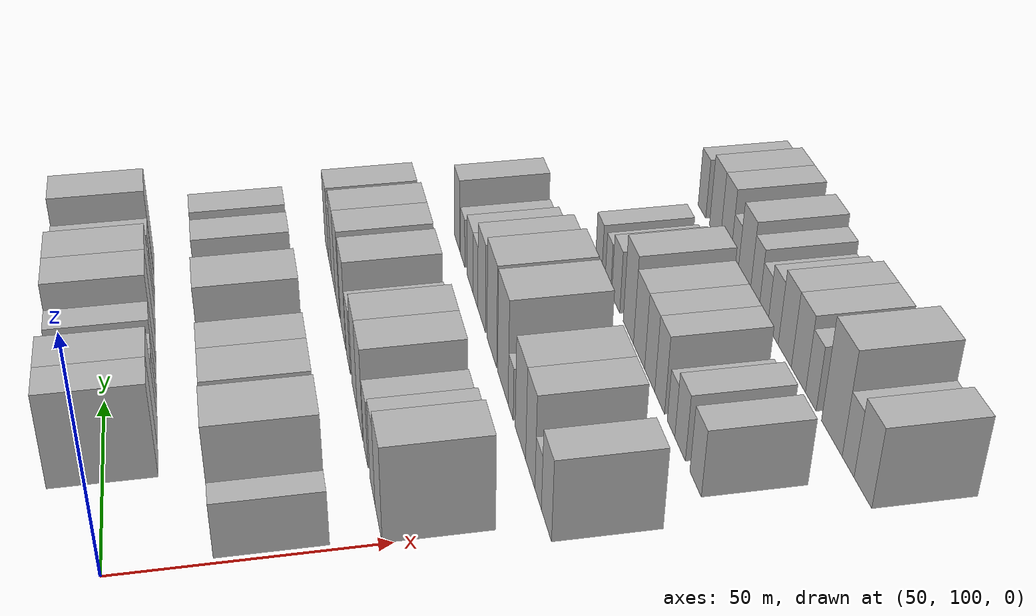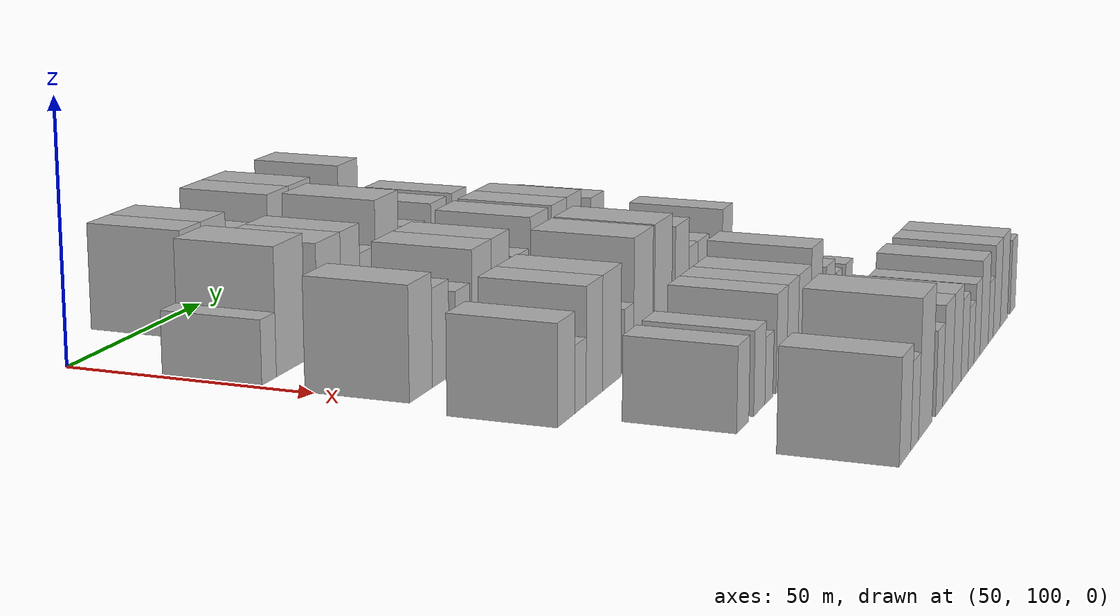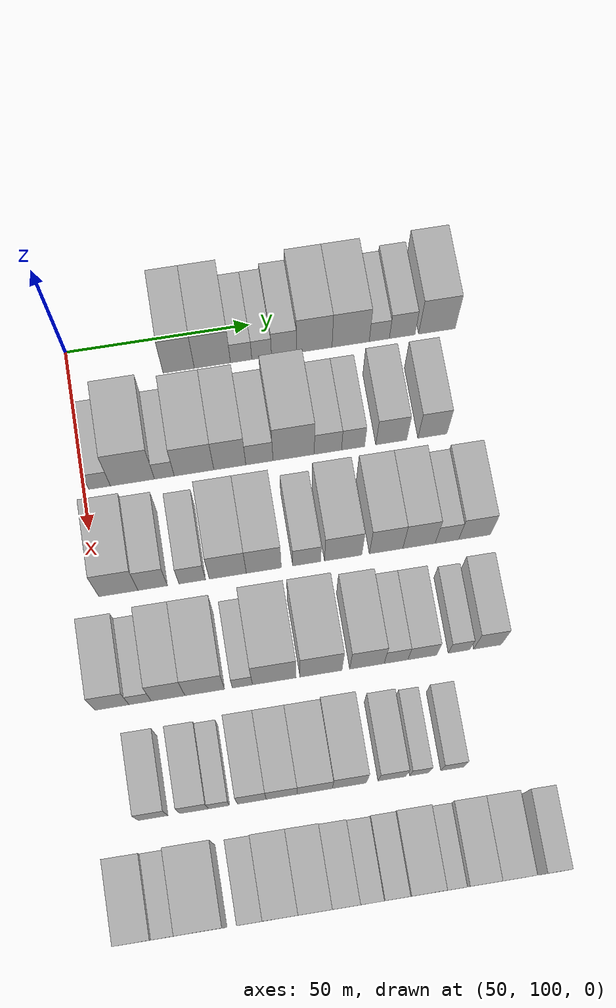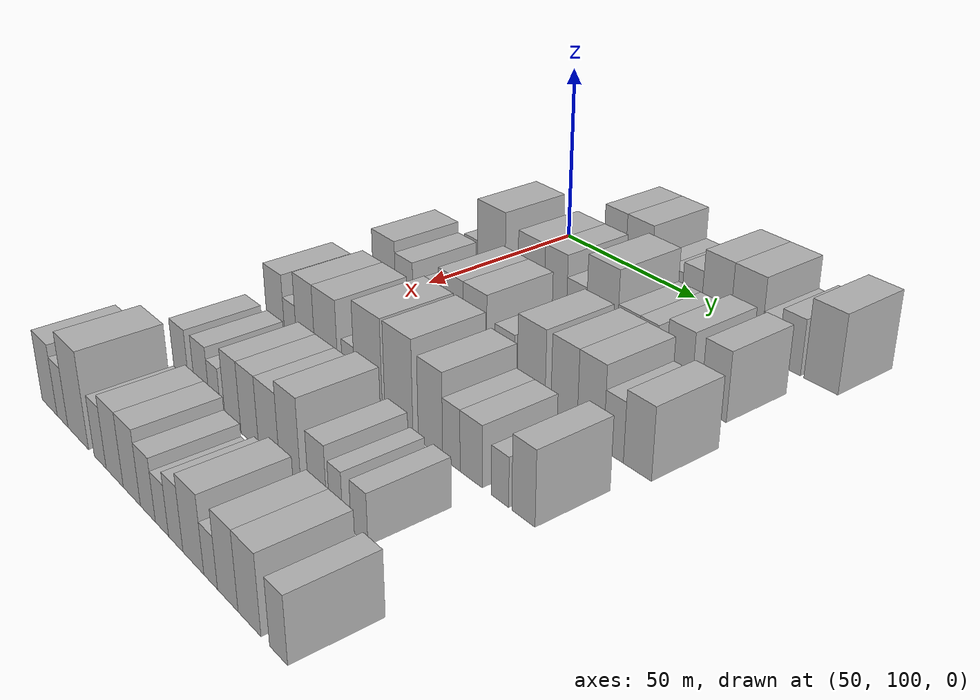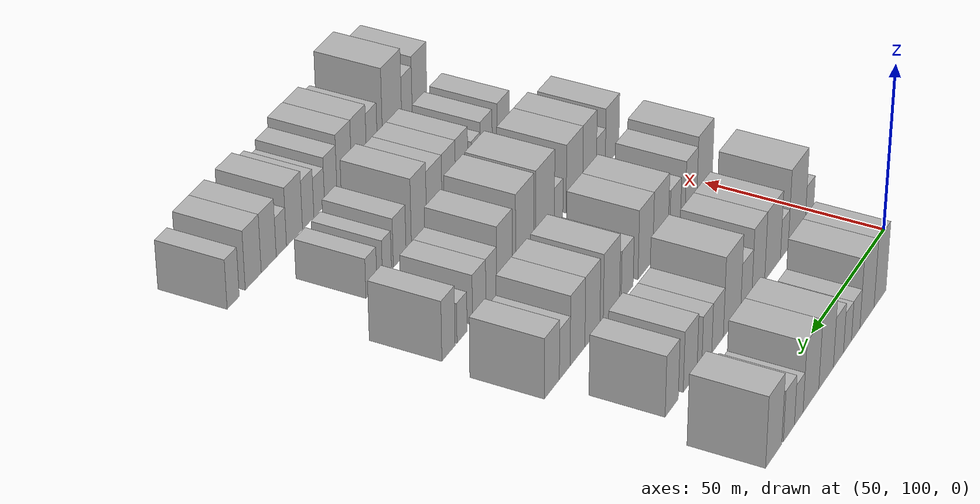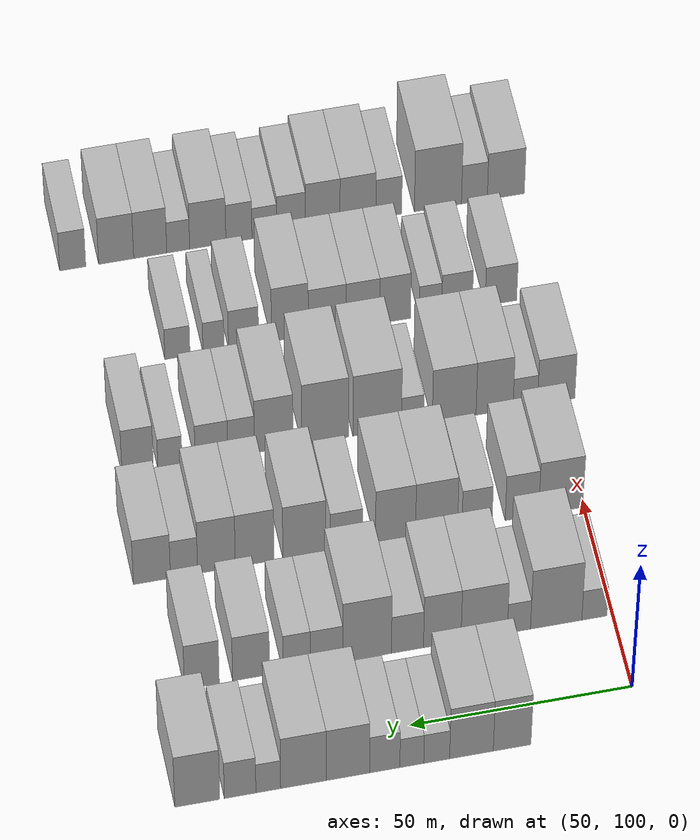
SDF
<sdf version="1.6">
 <world name="default">
  <model name="building_67">
   <static>1</static>
   <pose>50.0000 129.2754 0 0.000000 0.000000 0.000000</pose>
   <link name="link">
    <pose>0 0 10.50 0 0 0</pose>
    <collision name="collision"><geometry><box><size>20.0000 8.4361 21.0000</size></box></geometry></collision>
    <visual name="visual">
     <cast_shadows>0</cast_shadows>
     <geometry><box><size>20.0000 8.4361 21.0000</size></box></geometry>
     <material>
      <script>
       <uri>model://HANNAS_wall/materials/scripts</uri>
       <uri>model://HANNAS_wall/materials/textures</uri>
       <name>vrc/HANNAS_wall</name>
      </script>
     </material>
    </visual>
   </link>
  </model>
  <model name="building_68">
   <static>1</static>
   <pose>50.0000 138.3827 0 0.000000 0.000000 0.000000</pose>
   <link name="link">
    <pose>0 0 10.50 0 0 0</pose>
    <collision name="collision"><geometry><box><size>20.0000 9.7784 21.0000</size></box></geometry></collision>
    <visual name="visual">
     <cast_shadows>0</cast_shadows>
     <geometry><box><size>20.0000 9.7784 21.0000</size></box></geometry>
     <material>
      <script>
       <uri>model://HANNAS_wall/materials/scripts</uri>
       <uri>model://HANNAS_wall/materials/textures</uri>
       <name>vrc/HANNAS_wall</name>
      </script>
     </material>
    </visual>
   </link>
  </model>
  <model name="building_69">
   <static>1</static>
   <pose>50.0000 146.1593 0 0.000000 0.000000 0.000000</pose>
   <link name="link">
    <pose>0 0 6.00 0 0 0</pose>
    <collision name="collision"><geometry><box><size>20.0000 5.7748 12.0000</size></box></geometry></collision>
    <visual name="visual">
     <cast_shadows>0</cast_shadows>
     <geometry><box><size>20.0000 5.7748 12.0000</size></box></geometry>
     <material>
      <script>
       <uri>model://HANNAS_wall/materials/scripts</uri>
       <uri>model://HANNAS_wall/materials/textures</uri>
       <name>vrc/HANNAS_wall</name>
      </script>
     </material>
    </visual>
   </link>
  </model>
  <model name="building_70">
   <static>1</static>
   <pose>50.0000 151.7193 0 0.000000 0.000000 0.000000</pose>
   <link name="link">
    <pose>0 0 6.00 0 0 0</pose>
    <collision name="collision"><geometry><box><size>20.0000 5.3453 12.0000</size></box></geometry></collision>
    <visual name="visual">
     <cast_shadows>0</cast_shadows>
     <geometry><box><size>20.0000 5.3453 12.0000</size></box></geometry>
     <material>
      <script>
       <uri>model://HANNAS_wall/materials/scripts</uri>
       <uri>model://HANNAS_wall/materials/textures</uri>
       <name>vrc/HANNAS_wall</name>
      </script>
     </material>
    </visual>
   </link>
  </model>
  <model name="building_71">
   <static>1</static>
   <pose>50.0000 157.7766 0 0.000000 0.000000 0.000000</pose>
   <link name="link">
    <pose>0 0 7.50 0 0 0</pose>
    <collision name="collision"><geometry><box><size>20.0000 6.7693 15.0000</size></box></geometry></collision>
    <visual name="visual">
     <cast_shadows>0</cast_shadows>
     <geometry><box><size>20.0000 6.7693 15.0000</size></box></geometry>
     <material>
      <script>
       <uri>model://HANNAS_wall/materials/scripts</uri>
       <uri>model://HANNAS_wall/materials/textures</uri>
       <name>vrc/HANNAS_wall</name>
      </script>
     </material>
    </visual>
   </link>
  </model>
  <model name="building_72">
   <static>1</static>
   <pose>50.0000 165.9921 0 0.000000 0.000000 0.000000</pose>
   <link name="link">
    <pose>0 0 10.50 0 0 0</pose>
    <collision name="collision"><geometry><box><size>20.0000 9.6617 21.0000</size></box></geometry></collision>
    <visual name="visual">
     <cast_shadows>0</cast_shadows>
     <geometry><box><size>20.0000 9.6617 21.0000</size></box></geometry>
     <material>
      <script>
       <uri>model://HANNAS_wall/materials/scripts</uri>
       <uri>model://HANNAS_wall/materials/textures</uri>
       <name>vrc/HANNAS_wall</name>
      </script>
     </material>
    </visual>
   </link>
  </model>
  <model name="building_73">
   <static>1</static>
   <pose>50.0000 175.8897 0 0.000000 0.000000 0.000000</pose>
   <link name="link">
    <pose>0 0 10.50 0 0 0</pose>
    <collision name="collision"><geometry><box><size>20.0000 10.1334 21.0000</size></box></geometry></collision>
    <visual name="visual">
     <cast_shadows>0</cast_shadows>
     <geometry><box><size>20.0000 10.1334 21.0000</size></box></geometry>
     <material>
      <script>
       <uri>model://HANNAS_wall/materials/scripts</uri>
       <uri>model://HANNAS_wall/materials/textures</uri>
       <name>vrc/HANNAS_wall</name>
      </script>
     </material>
    </visual>
   </link>
  </model>
  <model name="building_74">
   <static>1</static>
   <pose>50.0000 183.7047 0 0.000000 0.000000 0.000000</pose>
   <link name="link">
    <pose>0 0 6.00 0 0 0</pose>
    <collision name="collision"><geometry><box><size>20.0000 5.4967 12.0000</size></box></geometry></collision>
    <visual name="visual">
     <cast_shadows>0</cast_shadows>
     <geometry><box><size>20.0000 5.4967 12.0000</size></box></geometry>
     <material>
      <script>
       <uri>model://HANNAS_wall/materials/scripts</uri>
       <uri>model://HANNAS_wall/materials/textures</uri>
       <name>vrc/HANNAS_wall</name>
      </script>
     </material>
    </visual>
   </link>
  </model>
  <model name="building_75">
   <static>1</static>
   <pose>50.0000 189.9546 0 0.000000 0.000000 0.000000</pose>
   <link name="link">
    <pose>0 0 7.50 0 0 0</pose>
    <collision name="collision"><geometry><box><size>20.0000 7.0030 15.0000</size></box></geometry></collision>
    <visual name="visual">
     <cast_shadows>0</cast_shadows>
     <geometry><box><size>20.0000 7.0030 15.0000</size></box></geometry>
     <material>
      <script>
       <uri>model://HANNAS_wall/materials/scripts</uri>
       <uri>model://HANNAS_wall/materials/textures</uri>
       <name>vrc/HANNAS_wall</name>
      </script>
     </material>
    </visual>
   </link>
  </model>
  <model name="building_76">
   <static>1</static>
   <pose>50.0000 199.4460 0 0.000000 0.000000 0.000000</pose>
   <link name="link">
    <pose>0 0 10.50 0 0 0</pose>
    <collision name="collision"><geometry><box><size>20.0000 9.9798 21.0000</size></box></geometry></collision>
    <visual name="visual">
     <cast_shadows>0</cast_shadows>
     <geometry><box><size>20.0000 9.9798 21.0000</size></box></geometry>
     <material>
      <script>
       <uri>model://HANNAS_wall/materials/scripts</uri>
       <uri>model://HANNAS_wall/materials/textures</uri>
       <name>vrc/HANNAS_wall</name>
      </script>
     </material>
    </visual>
   </link>
  </model>
  <model name="building_182">
   <static>1</static>
   <pose>79.0000 104.2243 0 0.000000 0.000000 0.000000</pose>
   <link name="link">
    <pose>0 0 6.00 0 0 0</pose>
    <collision name="collision"><geometry><box><size>20.0000 5.7274 12.0000</size></box></geometry></collision>
    <visual name="visual">
     <cast_shadows>0</cast_shadows>
     <geometry><box><size>20.0000 5.7274 12.0000</size></box></geometry>
     <material>
      <script>
       <uri>model://HANNAS_wall/materials/scripts</uri>
       <uri>model://HANNAS_wall/materials/textures</uri>
       <name>vrc/HANNAS_wall</name>
      </script>
     </material>
    </visual>
   </link>
  </model>
  <model name="building_183">
   <static>1</static>
   <pose>79.0000 112.9127 0 0.000000 0.000000 0.000000</pose>
   <link name="link">
    <pose>0 0 12.00 0 0 0</pose>
    <collision name="collision"><geometry><box><size>20.0000 11.6494 24.0000</size></box></geometry></collision>
    <visual name="visual">
     <cast_shadows>0</cast_shadows>
     <geometry><box><size>20.0000 11.6494 24.0000</size></box></geometry>
     <material>
      <script>
       <uri>model://HANNAS_wall/materials/scripts</uri>
       <uri>model://HANNAS_wall/materials/textures</uri>
       <name>vrc/HANNAS_wall</name>
      </script>
     </material>
    </visual>
   </link>
  </model>
  <model name="building_184">
   <static>1</static>
   <pose>79.0000 121.3632 0 0.000000 0.000000 0.000000</pose>
   <link name="link">
    <pose>0 0 6.00 0 0 0</pose>
    <collision name="collision"><geometry><box><size>20.0000 5.2517 12.0000</size></box></geometry></collision>
    <visual name="visual">
     <cast_shadows>0</cast_shadows>
     <geometry><box><size>20.0000 5.2517 12.0000</size></box></geometry>
     <material>
      <script>
       <uri>model://HANNAS_wall/materials/scripts</uri>
       <uri>model://HANNAS_wall/materials/textures</uri>
       <name>vrc/HANNAS_wall</name>
      </script>
     </material>
    </visual>
   </link>
  </model>
  <model name="building_185">
   <static>1</static>
   <pose>79.0000 129.2382 0 0.000000 0.000000 0.000000</pose>
   <link name="link">
    <pose>0 0 10.50 0 0 0</pose>
    <collision name="collision"><geometry><box><size>20.0000 10.4982 21.0000</size></box></geometry></collision>
    <visual name="visual">
     <cast_shadows>0</cast_shadows>
     <geometry><box><size>20.0000 10.4982 21.0000</size></box></geometry>
     <material>
      <script>
       <uri>model://HANNAS_wall/materials/scripts</uri>
       <uri>model://HANNAS_wall/materials/textures</uri>
       <name>vrc/HANNAS_wall</name>
      </script>
     </material>
    </visual>
   </link>
  </model>
  <model name="building_186">
   <static>1</static>
   <pose>79.0000 138.7290 0 0.000000 0.000000 0.000000</pose>
   <link name="link">
    <pose>0 0 10.50 0 0 0</pose>
    <collision name="collision"><geometry><box><size>20.0000 8.4835 21.0000</size></box></geometry></collision>
    <visual name="visual">
     <cast_shadows>0</cast_shadows>
     <geometry><box><size>20.0000 8.4835 21.0000</size></box></geometry>
     <material>
      <script>
       <uri>model://HANNAS_wall/materials/scripts</uri>
       <uri>model://HANNAS_wall/materials/textures</uri>
       <name>vrc/HANNAS_wall</name>
      </script>
     </material>
    </visual>
   </link>
  </model>
  <model name="building_187">
   <static>1</static>
   <pose>79.0000 146.5962 0 0.000000 0.000000 0.000000</pose>
   <link name="link">
    <pose>0 0 7.50 0 0 0</pose>
    <collision name="collision"><geometry><box><size>20.0000 7.2509 15.0000</size></box></geometry></collision>
    <visual name="visual">
     <cast_shadows>0</cast_shadows>
     <geometry><box><size>20.0000 7.2509 15.0000</size></box></geometry>
     <material>
      <script>
       <uri>model://HANNAS_wall/materials/scripts</uri>
       <uri>model://HANNAS_wall/materials/textures</uri>
       <name>vrc/HANNAS_wall</name>
      </script>
     </material>
    </visual>
   </link>
  </model>
  <model name="building_188">
   <static>1</static>
   <pose>79.0000 155.7147 0 0.000000 0.000000 0.000000</pose>
   <link name="link">
    <pose>0 0 12.00 0 0 0</pose>
    <collision name="collision"><geometry><box><size>20.0000 10.9860 24.0000</size></box></geometry></collision>
    <visual name="visual">
     <cast_shadows>0</cast_shadows>
     <geometry><box><size>20.0000 10.9860 24.0000</size></box></geometry>
     <material>
      <script>
       <uri>model://HANNAS_wall/materials/scripts</uri>
       <uri>model://HANNAS_wall/materials/textures</uri>
       <name>vrc/HANNAS_wall</name>
      </script>
     </material>
    </visual>
   </link>
  </model>
  <model name="building_189">
   <static>1</static>
   <pose>79.0000 164.8472 0 0.000000 0.000000 0.000000</pose>
   <link name="link">
    <pose>0 0 7.50 0 0 0</pose>
    <collision name="collision"><geometry><box><size>20.0000 7.2790 15.0000</size></box></geometry></collision>
    <visual name="visual">
     <cast_shadows>0</cast_shadows>
     <geometry><box><size>20.0000 7.2790 15.0000</size></box></geometry>
     <material>
      <script>
       <uri>model://HANNAS_wall/materials/scripts</uri>
       <uri>model://HANNAS_wall/materials/textures</uri>
       <name>vrc/HANNAS_wall</name>
      </script>
     </material>
    </visual>
   </link>
  </model>
  <model name="building_190">
   <static>1</static>
   <pose>79.0000 171.5733 0 0.000000 0.000000 0.000000</pose>
   <link name="link">
    <pose>0 0 7.50 0 0 0</pose>
    <collision name="collision"><geometry><box><size>20.0000 6.1732 15.0000</size></box></geometry></collision>
    <visual name="visual">
     <cast_shadows>0</cast_shadows>
     <geometry><box><size>20.0000 6.1732 15.0000</size></box></geometry>
     <material>
      <script>
       <uri>model://HANNAS_wall/materials/scripts</uri>
       <uri>model://HANNAS_wall/materials/textures</uri>
       <name>vrc/HANNAS_wall</name>
      </script>
     </material>
    </visual>
   </link>
  </model>
  <model name="building_191">
   <static>1</static>
   <pose>79.0000 181.8068 0 0.000000 0.000000 0.000000</pose>
   <link name="link">
    <pose>0 0 9.00 0 0 0</pose>
    <collision name="collision"><geometry><box><size>20.0000 8.2939 18.0000</size></box></geometry></collision>
    <visual name="visual">
     <cast_shadows>0</cast_shadows>
     <geometry><box><size>20.0000 8.2939 18.0000</size></box></geometry>
     <material>
      <script>
       <uri>model://HANNAS_wall/materials/scripts</uri>
       <uri>model://HANNAS_wall/materials/textures</uri>
       <name>vrc/HANNAS_wall</name>
      </script>
     </material>
    </visual>
   </link>
  </model>
  <model name="building_192">
   <static>1</static>
   <pose>79.0000 192.8562 0 0.000000 0.000000 0.000000</pose>
   <link name="link">
    <pose>0 0 9.00 0 0 0</pose>
    <collision name="collision"><geometry><box><size>20.0000 7.8050 18.0000</size></box></geometry></collision>
    <visual name="visual">
     <cast_shadows>0</cast_shadows>
     <geometry><box><size>20.0000 7.8050 18.0000</size></box></geometry>
     <material>
      <script>
       <uri>model://HANNAS_wall/materials/scripts</uri>
       <uri>model://HANNAS_wall/materials/textures</uri>
       <name>vrc/HANNAS_wall</name>
      </script>
     </material>
    </visual>
   </link>
  </model>
  <model name="building_294">
   <static>1</static>
   <pose>108.0000 105.3740 0 0.000000 0.000000 0.000000</pose>
   <link name="link">
    <pose>0 0 10.50 0 0 0</pose>
    <collision name="collision"><geometry><box><size>20.0000 10.1405 21.0000</size></box></geometry></collision>
    <visual name="visual">
     <cast_shadows>0</cast_shadows>
     <geometry><box><size>20.0000 10.1405 21.0000</size></box></geometry>
     <material>
      <script>
       <uri>model://HANNAS_wall/materials/scripts</uri>
       <uri>model://HANNAS_wall/materials/textures</uri>
       <name>vrc/HANNAS_wall</name>
      </script>
     </material>
    </visual>
   </link>
  </model>
  <model name="building_295">
   <static>1</static>
   <pose>108.0000 114.2817 0 0.000000 0.000000 0.000000</pose>
   <link name="link">
    <pose>0 0 9.00 0 0 0</pose>
    <collision name="collision"><geometry><box><size>20.0000 7.6747 18.0000</size></box></geometry></collision>
    <visual name="visual">
     <cast_shadows>0</cast_shadows>
     <geometry><box><size>20.0000 7.6747 18.0000</size></box></geometry>
     <material>
      <script>
       <uri>model://HANNAS_wall/materials/scripts</uri>
       <uri>model://HANNAS_wall/materials/textures</uri>
       <name>vrc/HANNAS_wall</name>
      </script>
     </material>
    </visual>
   </link>
  </model>
  <model name="building_296">
   <static>1</static>
   <pose>108.0000 124.5735 0 0.000000 0.000000 0.000000</pose>
   <link name="link">
    <pose>0 0 7.50 0 0 0</pose>
    <collision name="collision"><geometry><box><size>20.0000 6.9089 15.0000</size></box></geometry></collision>
    <visual name="visual">
     <cast_shadows>0</cast_shadows>
     <geometry><box><size>20.0000 6.9089 15.0000</size></box></geometry>
     <material>
      <script>
       <uri>model://HANNAS_wall/materials/scripts</uri>
       <uri>model://HANNAS_wall/materials/textures</uri>
       <name>vrc/HANNAS_wall</name>
      </script>
     </material>
    </visual>
   </link>
  </model>
  <model name="building_297">
   <static>1</static>
   <pose>108.0000 133.8400 0 0.000000 0.000000 0.000000</pose>
   <link name="link">
    <pose>0 0 10.50 0 0 0</pose>
    <collision name="collision"><geometry><box><size>20.0000 9.6241 21.0000</size></box></geometry></collision>
    <visual name="visual">
     <cast_shadows>0</cast_shadows>
     <geometry><box><size>20.0000 9.6241 21.0000</size></box></geometry>
     <material>
      <script>
       <uri>model://HANNAS_wall/materials/scripts</uri>
       <uri>model://HANNAS_wall/materials/textures</uri>
       <name>vrc/HANNAS_wall</name>
      </script>
     </material>
    </visual>
   </link>
  </model>
  <model name="building_298">
   <static>1</static>
   <pose>108.0000 143.2260 0 0.000000 0.000000 0.000000</pose>
   <link name="link">
    <pose>0 0 10.50 0 0 0</pose>
    <collision name="collision"><geometry><box><size>20.0000 9.1478 21.0000</size></box></geometry></collision>
    <visual name="visual">
     <cast_shadows>0</cast_shadows>
     <geometry><box><size>20.0000 9.1478 21.0000</size></box></geometry>
     <material>
      <script>
       <uri>model://HANNAS_wall/materials/scripts</uri>
       <uri>model://HANNAS_wall/materials/textures</uri>
       <name>vrc/HANNAS_wall</name>
      </script>
     </material>
    </visual>
   </link>
  </model>
  <model name="building_299">
   <static>1</static>
   <pose>108.0000 154.4499 0 0.000000 0.000000 0.000000</pose>
   <link name="link">
    <pose>0 0 7.50 0 0 0</pose>
    <collision name="collision"><geometry><box><size>20.0000 7.3000 15.0000</size></box></geometry></collision>
    <visual name="visual">
     <cast_shadows>0</cast_shadows>
     <geometry><box><size>20.0000 7.3000 15.0000</size></box></geometry>
     <material>
      <script>
       <uri>model://HANNAS_wall/materials/scripts</uri>
       <uri>model://HANNAS_wall/materials/textures</uri>
       <name>vrc/HANNAS_wall</name>
      </script>
     </material>
    </visual>
   </link>
  </model>
  <model name="building_300">
   <static>1</static>
   <pose>108.0000 163.9937 0 0.000000 0.000000 0.000000</pose>
   <link name="link">
    <pose>0 0 10.50 0 0 0</pose>
    <collision name="collision"><geometry><box><size>20.0000 9.7877 21.0000</size></box></geometry></collision>
    <visual name="visual">
     <cast_shadows>0</cast_shadows>
     <geometry><box><size>20.0000 9.7877 21.0000</size></box></geometry>
     <material>
      <script>
       <uri>model://HANNAS_wall/materials/scripts</uri>
       <uri>model://HANNAS_wall/materials/textures</uri>
       <name>vrc/HANNAS_wall</name>
      </script>
     </material>
    </visual>
   </link>
  </model>
  <model name="building_301">
   <static>1</static>
   <pose>108.0000 175.2840 0 0.000000 0.000000 0.000000</pose>
   <link name="link">
    <pose>0 0 10.50 0 0 0</pose>
    <collision name="collision"><geometry><box><size>20.0000 8.7928 21.0000</size></box></geometry></collision>
    <visual name="visual">
     <cast_shadows>0</cast_shadows>
     <geometry><box><size>20.0000 8.7928 21.0000</size></box></geometry>
     <material>
      <script>
       <uri>model://HANNAS_wall/materials/scripts</uri>
       <uri>model://HANNAS_wall/materials/textures</uri>
       <name>vrc/HANNAS_wall</name>
      </script>
     </material>
    </visual>
   </link>
  </model>
  <model name="building_302">
   <static>1</static>
   <pose>108.0000 183.9537 0 0.000000 0.000000 0.000000</pose>
   <link name="link">
    <pose>0 0 10.50 0 0 0</pose>
    <collision name="collision"><geometry><box><size>20.0000 8.5467 21.0000</size></box></geometry></collision>
    <visual name="visual">
     <cast_shadows>0</cast_shadows>
     <geometry><box><size>20.0000 8.5467 21.0000</size></box></geometry>
     <material>
      <script>
       <uri>model://HANNAS_wall/materials/scripts</uri>
       <uri>model://HANNAS_wall/materials/textures</uri>
       <name>vrc/HANNAS_wall</name>
      </script>
     </material>
    </visual>
   </link>
  </model>
  <model name="building_303">
   <static>1</static>
   <pose>108.0000 191.3135 0 0.000000 0.000000 0.000000</pose>
   <link name="link">
    <pose>0 0 7.50 0 0 0</pose>
    <collision name="collision"><geometry><box><size>20.0000 6.1730 15.0000</size></box></geometry></collision>
    <visual name="visual">
     <cast_shadows>0</cast_shadows>
     <geometry><box><size>20.0000 6.1730 15.0000</size></box></geometry>
     <material>
      <script>
       <uri>model://HANNAS_wall/materials/scripts</uri>
       <uri>model://HANNAS_wall/materials/textures</uri>
       <name>vrc/HANNAS_wall</name>
      </script>
     </material>
    </visual>
   </link>
  </model>
  <model name="building_304">
   <static>1</static>
   <pose>108.0000 198.6017 0 0.000000 0.000000 0.000000</pose>
   <link name="link">
    <pose>0 0 9.00 0 0 0</pose>
    <collision name="collision"><geometry><box><size>20.0000 8.4033 18.0000</size></box></geometry></collision>
    <visual name="visual">
     <cast_shadows>0</cast_shadows>
     <geometry><box><size>20.0000 8.4033 18.0000</size></box></geometry>
     <material>
      <script>
       <uri>model://HANNAS_wall/materials/scripts</uri>
       <uri>model://HANNAS_wall/materials/textures</uri>
       <name>vrc/HANNAS_wall</name>
      </script>
     </material>
    </visual>
   </link>
  </model>
  <model name="building_402">
   <static>1</static>
   <pose>137.0000 99.9290 0 0.000000 0.000000 0.000000</pose>
   <link name="link">
    <pose>0 0 9.00 0 0 0</pose>
    <collision name="collision"><geometry><box><size>20.0000 8.6572 18.0000</size></box></geometry></collision>
    <visual name="visual">
     <cast_shadows>0</cast_shadows>
     <geometry><box><size>20.0000 8.6572 18.0000</size></box></geometry>
     <material>
      <script>
       <uri>model://HANNAS_wall/materials/scripts</uri>
       <uri>model://HANNAS_wall/materials/textures</uri>
       <name>vrc/HANNAS_wall</name>
      </script>
     </material>
    </visual>
   </link>
  </model>
  <model name="building_403">
   <static>1</static>
   <pose>137.0000 107.1037 0 0.000000 0.000000 0.000000</pose>
   <link name="link">
    <pose>0 0 6.00 0 0 0</pose>
    <collision name="collision"><geometry><box><size>20.0000 5.6922 12.0000</size></box></geometry></collision>
    <visual name="visual">
     <cast_shadows>0</cast_shadows>
     <geometry><box><size>20.0000 5.6922 12.0000</size></box></geometry>
     <material>
      <script>
       <uri>model://HANNAS_wall/materials/scripts</uri>
       <uri>model://HANNAS_wall/materials/textures</uri>
       <name>vrc/HANNAS_wall</name>
      </script>
     </material>
    </visual>
   </link>
  </model>
  <model name="building_404">
   <static>1</static>
   <pose>137.0000 114.2315 0 0.000000 0.000000 0.000000</pose>
   <link name="link">
    <pose>0 0 10.50 0 0 0</pose>
    <collision name="collision"><geometry><box><size>20.0000 8.5635 21.0000</size></box></geometry></collision>
    <visual name="visual">
     <cast_shadows>0</cast_shadows>
     <geometry><box><size>20.0000 8.5635 21.0000</size></box></geometry>
     <material>
      <script>
       <uri>model://HANNAS_wall/materials/scripts</uri>
       <uri>model://HANNAS_wall/materials/textures</uri>
       <name>vrc/HANNAS_wall</name>
      </script>
     </material>
    </visual>
   </link>
  </model>
  <model name="building_405">
   <static>1</static>
   <pose>137.0000 123.5830 0 0.000000 0.000000 0.000000</pose>
   <link name="link">
    <pose>0 0 10.50 0 0 0</pose>
    <collision name="collision"><geometry><box><size>20.0000 10.1394 21.0000</size></box></geometry></collision>
    <visual name="visual">
     <cast_shadows>0</cast_shadows>
     <geometry><box><size>20.0000 10.1394 21.0000</size></box></geometry>
     <material>
      <script>
       <uri>model://HANNAS_wall/materials/scripts</uri>
       <uri>model://HANNAS_wall/materials/textures</uri>
       <name>vrc/HANNAS_wall</name>
      </script>
     </material>
    </visual>
   </link>
  </model>
  <model name="building_406">
   <static>1</static>
   <pose>137.0000 133.2210 0 0.000000 0.000000 0.000000</pose>
   <link name="link">
    <pose>0 0 6.00 0 0 0</pose>
    <collision name="collision"><geometry><box><size>20.0000 5.1366 12.0000</size></box></geometry></collision>
    <visual name="visual">
     <cast_shadows>0</cast_shadows>
     <geometry><box><size>20.0000 5.1366 12.0000</size></box></geometry>
     <material>
      <script>
       <uri>model://HANNAS_wall/materials/scripts</uri>
       <uri>model://HANNAS_wall/materials/textures</uri>
       <name>vrc/HANNAS_wall</name>
      </script>
     </material>
    </visual>
   </link>
  </model>
  <model name="building_407">
   <static>1</static>
   <pose>137.0000 141.3851 0 0.000000 0.000000 0.000000</pose>
   <link name="link">
    <pose>0 0 12.00 0 0 0</pose>
    <collision name="collision"><geometry><box><size>20.0000 11.1916 24.0000</size></box></geometry></collision>
    <visual name="visual">
     <cast_shadows>0</cast_shadows>
     <geometry><box><size>20.0000 11.1916 24.0000</size></box></geometry>
     <material>
      <script>
       <uri>model://HANNAS_wall/materials/scripts</uri>
       <uri>model://HANNAS_wall/materials/textures</uri>
       <name>vrc/HANNAS_wall</name>
      </script>
     </material>
    </visual>
   </link>
  </model>
  <model name="building_408">
   <static>1</static>
   <pose>137.0000 153.3706 0 0.000000 0.000000 0.000000</pose>
   <link name="link">
    <pose>0 0 12.00 0 0 0</pose>
    <collision name="collision"><geometry><box><size>20.0000 10.7793 24.0000</size></box></geometry></collision>
    <visual name="visual">
     <cast_shadows>0</cast_shadows>
     <geometry><box><size>20.0000 10.7793 24.0000</size></box></geometry>
     <material>
      <script>
       <uri>model://HANNAS_wall/materials/scripts</uri>
       <uri>model://HANNAS_wall/materials/textures</uri>
       <name>vrc/HANNAS_wall</name>
      </script>
     </material>
    </visual>
   </link>
  </model>
  <model name="building_409">
   <static>1</static>
   <pose>137.0000 165.1963 0 0.000000 0.000000 0.000000</pose>
   <link name="link">
    <pose>0 0 10.50 0 0 0</pose>
    <collision name="collision"><geometry><box><size>20.0000 8.8721 21.0000</size></box></geometry></collision>
    <visual name="visual">
     <cast_shadows>0</cast_shadows>
     <geometry><box><size>20.0000 8.8721 21.0000</size></box></geometry>
     <material>
      <script>
       <uri>model://HANNAS_wall/materials/scripts</uri>
       <uri>model://HANNAS_wall/materials/textures</uri>
       <name>vrc/HANNAS_wall</name>
      </script>
     </material>
    </visual>
   </link>
  </model>
  <model name="building_410">
   <static>1</static>
   <pose>137.0000 172.6875 0 0.000000 0.000000 0.000000</pose>
   <link name="link">
    <pose>0 0 7.50 0 0 0</pose>
    <collision name="collision"><geometry><box><size>20.0000 6.1104 15.0000</size></box></geometry></collision>
    <visual name="visual">
     <cast_shadows>0</cast_shadows>
     <geometry><box><size>20.0000 6.1104 15.0000</size></box></geometry>
     <material>
      <script>
       <uri>model://HANNAS_wall/materials/scripts</uri>
       <uri>model://HANNAS_wall/materials/textures</uri>
       <name>vrc/HANNAS_wall</name>
      </script>
     </material>
    </visual>
   </link>
  </model>
  <model name="building_411">
   <static>1</static>
   <pose>137.0000 179.4876 0 0.000000 0.000000 0.000000</pose>
   <link name="link">
    <pose>0 0 7.50 0 0 0</pose>
    <collision name="collision"><geometry><box><size>20.0000 7.4898 15.0000</size></box></geometry></collision>
    <visual name="visual">
     <cast_shadows>0</cast_shadows>
     <geometry><box><size>20.0000 7.4898 15.0000</size></box></geometry>
     <material>
      <script>
       <uri>model://HANNAS_wall/materials/scripts</uri>
       <uri>model://HANNAS_wall/materials/textures</uri>
       <name>vrc/HANNAS_wall</name>
      </script>
     </material>
    </visual>
   </link>
  </model>
  <model name="building_412">
   <static>1</static>
   <pose>137.0000 189.0177 0 0.000000 0.000000 0.000000</pose>
   <link name="link">
    <pose>0 0 6.00 0 0 0</pose>
    <collision name="collision"><geometry><box><size>20.0000 5.5703 12.0000</size></box></geometry></collision>
    <visual name="visual">
     <cast_shadows>0</cast_shadows>
     <geometry><box><size>20.0000 5.5703 12.0000</size></box></geometry>
     <material>
      <script>
       <uri>model://HANNAS_wall/materials/scripts</uri>
       <uri>model://HANNAS_wall/materials/textures</uri>
       <name>vrc/HANNAS_wall</name>
      </script>
     </material>
    </visual>
   </link>
  </model>
  <model name="building_413">
   <static>1</static>
   <pose>137.0000 196.4068 0 0.000000 0.000000 0.000000</pose>
   <link name="link">
    <pose>0 0 9.00 0 0 0</pose>
    <collision name="collision"><geometry><box><size>20.0000 7.2078 18.0000</size></box></geometry></collision>
    <visual name="visual">
     <cast_shadows>0</cast_shadows>
     <geometry><box><size>20.0000 7.2078 18.0000</size></box></geometry>
     <material>
      <script>
       <uri>model://HANNAS_wall/materials/scripts</uri>
       <uri>model://HANNAS_wall/materials/textures</uri>
       <name>vrc/HANNAS_wall</name>
      </script>
     </material>
    </visual>
   </link>
  </model>
  <model name="building_516">
   <static>1</static>
   <pose>166.0000 106.4108 0 0.000000 0.000000 0.000000</pose>
   <link name="link">
    <pose>0 0 7.50 0 0 0</pose>
    <collision name="collision"><geometry><box><size>20.0000 7.3998 15.0000</size></box></geometry></collision>
    <visual name="visual">
     <cast_shadows>0</cast_shadows>
     <geometry><box><size>20.0000 7.3998 15.0000</size></box></geometry>
     <material>
      <script>
       <uri>model://HANNAS_wall/materials/scripts</uri>
       <uri>model://HANNAS_wall/materials/textures</uri>
       <name>vrc/HANNAS_wall</name>
      </script>
     </material>
    </visual>
   </link>
  </model>
  <model name="building_517">
   <static>1</static>
   <pose>166.0000 116.7001 0 0.000000 0.000000 0.000000</pose>
   <link name="link">
    <pose>0 0 7.50 0 0 0</pose>
    <collision name="collision"><geometry><box><size>20.0000 7.1788 15.0000</size></box></geometry></collision>
    <visual name="visual">
     <cast_shadows>0</cast_shadows>
     <geometry><box><size>20.0000 7.1788 15.0000</size></box></geometry>
     <material>
      <script>
       <uri>model://HANNAS_wall/materials/scripts</uri>
       <uri>model://HANNAS_wall/materials/textures</uri>
       <name>vrc/HANNAS_wall</name>
      </script>
     </material>
    </visual>
   </link>
  </model>
  <model name="building_518">
   <static>1</static>
   <pose>166.0000 122.9309 0 0.000000 0.000000 0.000000</pose>
   <link name="link">
    <pose>0 0 6.00 0 0 0</pose>
    <collision name="collision"><geometry><box><size>20.0000 5.2829 12.0000</size></box></geometry></collision>
    <visual name="visual">
     <cast_shadows>0</cast_shadows>
     <geometry><box><size>20.0000 5.2829 12.0000</size></box></geometry>
     <material>
      <script>
       <uri>model://HANNAS_wall/materials/scripts</uri>
       <uri>model://HANNAS_wall/materials/textures</uri>
       <name>vrc/HANNAS_wall</name>
      </script>
     </material>
    </visual>
   </link>
  </model>
  <model name="building_519">
   <static>1</static>
   <pose>166.0000 131.1807 0 0.000000 0.000000 0.000000</pose>
   <link name="link">
    <pose>0 0 9.00 0 0 0</pose>
    <collision name="collision"><geometry><box><size>20.0000 7.2167 18.0000</size></box></geometry></collision>
    <visual name="visual">
     <cast_shadows>0</cast_shadows>
     <geometry><box><size>20.0000 7.2167 18.0000</size></box></geometry>
     <material>
      <script>
       <uri>model://HANNAS_wall/materials/scripts</uri>
       <uri>model://HANNAS_wall/materials/textures</uri>
       <name>vrc/HANNAS_wall</name>
      </script>
     </material>
    </visual>
   </link>
  </model>
  <model name="building_520">
   <static>1</static>
   <pose>166.0000 138.6807 0 0.000000 0.000000 0.000000</pose>
   <link name="link">
    <pose>0 0 9.00 0 0 0</pose>
    <collision name="collision"><geometry><box><size>20.0000 7.7833 18.0000</size></box></geometry></collision>
    <visual name="visual">
     <cast_shadows>0</cast_shadows>
     <geometry><box><size>20.0000 7.7833 18.0000</size></box></geometry>
     <material>
      <script>
       <uri>model://HANNAS_wall/materials/scripts</uri>
       <uri>model://HANNAS_wall/materials/textures</uri>
       <name>vrc/HANNAS_wall</name>
      </script>
     </material>
    </visual>
   </link>
  </model>
  <model name="building_521">
   <static>1</static>
   <pose>166.0000 146.9888 0 0.000000 0.000000 0.000000</pose>
   <link name="link">
    <pose>0 0 9.00 0 0 0</pose>
    <collision name="collision"><geometry><box><size>20.0000 8.8329 18.0000</size></box></geometry></collision>
    <visual name="visual">
     <cast_shadows>0</cast_shadows>
     <geometry><box><size>20.0000 8.8329 18.0000</size></box></geometry>
     <material>
      <script>
       <uri>model://HANNAS_wall/materials/scripts</uri>
       <uri>model://HANNAS_wall/materials/textures</uri>
       <name>vrc/HANNAS_wall</name>
      </script>
     </material>
    </visual>
   </link>
  </model>
  <model name="building_522">
   <static>1</static>
   <pose>166.0000 155.6820 0 0.000000 0.000000 0.000000</pose>
   <link name="link">
    <pose>0 0 10.50 0 0 0</pose>
    <collision name="collision"><geometry><box><size>20.0000 8.5534 21.0000</size></box></geometry></collision>
    <visual name="visual">
     <cast_shadows>0</cast_shadows>
     <geometry><box><size>20.0000 8.5534 21.0000</size></box></geometry>
     <material>
      <script>
       <uri>model://HANNAS_wall/materials/scripts</uri>
       <uri>model://HANNAS_wall/materials/textures</uri>
       <name>vrc/HANNAS_wall</name>
      </script>
     </material>
    </visual>
   </link>
  </model>
  <model name="building_523">
   <static>1</static>
   <pose>166.0000 166.4662 0 0.000000 0.000000 0.000000</pose>
   <link name="link">
    <pose>0 0 7.50 0 0 0</pose>
    <collision name="collision"><geometry><box><size>20.0000 7.0150 15.0000</size></box></geometry></collision>
    <visual name="visual">
     <cast_shadows>0</cast_shadows>
     <geometry><box><size>20.0000 7.0150 15.0000</size></box></geometry>
     <material>
      <script>
       <uri>model://HANNAS_wall/materials/scripts</uri>
       <uri>model://HANNAS_wall/materials/textures</uri>
       <name>vrc/HANNAS_wall</name>
      </script>
     </material>
    </visual>
   </link>
  </model>
  <model name="building_524">
   <static>1</static>
   <pose>166.0000 173.4286 0 0.000000 0.000000 0.000000</pose>
   <link name="link">
    <pose>0 0 6.00 0 0 0</pose>
    <collision name="collision"><geometry><box><size>20.0000 4.9099 12.0000</size></box></geometry></collision>
    <visual name="visual">
     <cast_shadows>0</cast_shadows>
     <geometry><box><size>20.0000 4.9099 12.0000</size></box></geometry>
     <material>
      <script>
       <uri>model://HANNAS_wall/materials/scripts</uri>
       <uri>model://HANNAS_wall/materials/textures</uri>
       <name>vrc/HANNAS_wall</name>
      </script>
     </material>
    </visual>
   </link>
  </model>
  <model name="building_525">
   <static>1</static>
   <pose>166.0000 181.8122 0 0.000000 0.000000 0.000000</pose>
   <link name="link">
    <pose>0 0 6.00 0 0 0</pose>
    <collision name="collision"><geometry><box><size>20.0000 5.8572 12.0000</size></box></geometry></collision>
    <visual name="visual">
     <cast_shadows>0</cast_shadows>
     <geometry><box><size>20.0000 5.8572 12.0000</size></box></geometry>
     <material>
      <script>
       <uri>model://HANNAS_wall/materials/scripts</uri>
       <uri>model://HANNAS_wall/materials/textures</uri>
       <name>vrc/HANNAS_wall</name>
      </script>
     </material>
    </visual>
   </link>
  </model>
  <model name="building_624">
   <static>1</static>
   <pose>195.0000 98.9042 0 0.000000 0.000000 0.000000</pose>
   <link name="link">
    <pose>0 0 9.00 0 0 0</pose>
    <collision name="collision"><geometry><box><size>20.0000 8.7741 18.0000</size></box></geometry></collision>
    <visual name="visual">
     <cast_shadows>0</cast_shadows>
     <geometry><box><size>20.0000 8.7741 18.0000</size></box></geometry>
     <material>
      <script>
       <uri>model://HANNAS_wall/materials/scripts</uri>
       <uri>model://HANNAS_wall/materials/textures</uri>
       <name>vrc/HANNAS_wall</name>
      </script>
     </material>
    </visual>
   </link>
  </model>
  <model name="building_625">
   <static>1</static>
   <pose>195.0000 106.3523 0 0.000000 0.000000 0.000000</pose>
   <link name="link">
    <pose>0 0 7.50 0 0 0</pose>
    <collision name="collision"><geometry><box><size>20.0000 6.1221 15.0000</size></box></geometry></collision>
    <visual name="visual">
     <cast_shadows>0</cast_shadows>
     <geometry><box><size>20.0000 6.1221 15.0000</size></box></geometry>
     <material>
      <script>
       <uri>model://HANNAS_wall/materials/scripts</uri>
       <uri>model://HANNAS_wall/materials/textures</uri>
       <name>vrc/HANNAS_wall</name>
      </script>
     </material>
    </visual>
   </link>
  </model>
  <model name="building_626">
   <static>1</static>
   <pose>195.0000 114.9753 0 0.000000 0.000000 0.000000</pose>
   <link name="link">
    <pose>0 0 12.00 0 0 0</pose>
    <collision name="collision"><geometry><box><size>20.0000 11.1238 24.0000</size></box></geometry></collision>
    <visual name="visual">
     <cast_shadows>0</cast_shadows>
     <geometry><box><size>20.0000 11.1238 24.0000</size></box></geometry>
     <material>
      <script>
       <uri>model://HANNAS_wall/materials/scripts</uri>
       <uri>model://HANNAS_wall/materials/textures</uri>
       <name>vrc/HANNAS_wall</name>
      </script>
     </material>
    </visual>
   </link>
  </model>
  <model name="building_627">
   <static>1</static>
   <pose>195.0000 126.5976 0 0.000000 0.000000 0.000000</pose>
   <link name="link">
    <pose>0 0 7.50 0 0 0</pose>
    <collision name="collision"><geometry><box><size>20.0000 6.1207 15.0000</size></box></geometry></collision>
    <visual name="visual">
     <cast_shadows>0</cast_shadows>
     <geometry><box><size>20.0000 6.1207 15.0000</size></box></geometry>
     <material>
      <script>
       <uri>model://HANNAS_wall/materials/scripts</uri>
       <uri>model://HANNAS_wall/materials/textures</uri>
       <name>vrc/HANNAS_wall</name>
      </script>
     </material>
    </visual>
   </link>
  </model>
  <model name="building_628">
   <static>1</static>
   <pose>195.0000 133.8764 0 0.000000 0.000000 0.000000</pose>
   <link name="link">
    <pose>0 0 9.00 0 0 0</pose>
    <collision name="collision"><geometry><box><size>20.0000 8.4369 18.0000</size></box></geometry></collision>
    <visual name="visual">
     <cast_shadows>0</cast_shadows>
     <geometry><box><size>20.0000 8.4369 18.0000</size></box></geometry>
     <material>
      <script>
       <uri>model://HANNAS_wall/materials/scripts</uri>
       <uri>model://HANNAS_wall/materials/textures</uri>
       <name>vrc/HANNAS_wall</name>
      </script>
     </material>
    </visual>
   </link>
  </model>
  <model name="building_629">
   <static>1</static>
   <pose>195.0000 142.1509 0 0.000000 0.000000 0.000000</pose>
   <link name="link">
    <pose>0 0 9.00 0 0 0</pose>
    <collision name="collision"><geometry><box><size>20.0000 8.1122 18.0000</size></box></geometry></collision>
    <visual name="visual">
     <cast_shadows>0</cast_shadows>
     <geometry><box><size>20.0000 8.1122 18.0000</size></box></geometry>
     <material>
      <script>
       <uri>model://HANNAS_wall/materials/scripts</uri>
       <uri>model://HANNAS_wall/materials/textures</uri>
       <name>vrc/HANNAS_wall</name>
      </script>
     </material>
    </visual>
   </link>
  </model>
  <model name="building_630">
   <static>1</static>
   <pose>195.0000 149.5952 0 0.000000 0.000000 0.000000</pose>
   <link name="link">
    <pose>0 0 7.50 0 0 0</pose>
    <collision name="collision"><geometry><box><size>20.0000 6.7763 15.0000</size></box></geometry></collision>
    <visual name="visual">
     <cast_shadows>0</cast_shadows>
     <geometry><box><size>20.0000 6.7763 15.0000</size></box></geometry>
     <material>
      <script>
       <uri>model://HANNAS_wall/materials/scripts</uri>
       <uri>model://HANNAS_wall/materials/textures</uri>
       <name>vrc/HANNAS_wall</name>
      </script>
     </material>
    </visual>
   </link>
  </model>
  <model name="building_631">
   <static>1</static>
   <pose>195.0000 155.8962 0 0.000000 0.000000 0.000000</pose>
   <link name="link">
    <pose>0 0 6.00 0 0 0</pose>
    <collision name="collision"><geometry><box><size>20.0000 5.8258 12.0000</size></box></geometry></collision>
    <visual name="visual">
     <cast_shadows>0</cast_shadows>
     <geometry><box><size>20.0000 5.8258 12.0000</size></box></geometry>
     <material>
      <script>
       <uri>model://HANNAS_wall/materials/scripts</uri>
       <uri>model://HANNAS_wall/materials/textures</uri>
       <name>vrc/HANNAS_wall</name>
      </script>
     </material>
    </visual>
   </link>
  </model>
  <model name="building_632">
   <static>1</static>
   <pose>195.0000 161.8676 0 0.000000 0.000000 0.000000</pose>
   <link name="link">
    <pose>0 0 7.50 0 0 0</pose>
    <collision name="collision"><geometry><box><size>20.0000 6.1170 15.0000</size></box></geometry></collision>
    <visual name="visual">
     <cast_shadows>0</cast_shadows>
     <geometry><box><size>20.0000 6.1170 15.0000</size></box></geometry>
     <material>
      <script>
       <uri>model://HANNAS_wall/materials/scripts</uri>
       <uri>model://HANNAS_wall/materials/textures</uri>
       <name>vrc/HANNAS_wall</name>
      </script>
     </material>
    </visual>
   </link>
  </model>
  <model name="building_633">
   <static>1</static>
   <pose>195.0000 169.1737 0 0.000000 0.000000 0.000000</pose>
   <link name="link">
    <pose>0 0 9.00 0 0 0</pose>
    <collision name="collision"><geometry><box><size>20.0000 8.4952 18.0000</size></box></geometry></collision>
    <visual name="visual">
     <cast_shadows>0</cast_shadows>
     <geometry><box><size>20.0000 8.4952 18.0000</size></box></geometry>
     <material>
      <script>
       <uri>model://HANNAS_wall/materials/scripts</uri>
       <uri>model://HANNAS_wall/materials/textures</uri>
       <name>vrc/HANNAS_wall</name>
      </script>
     </material>
    </visual>
   </link>
  </model>
  <model name="building_634">
   <static>1</static>
   <pose>195.0000 176.1057 0 0.000000 0.000000 0.000000</pose>
   <link name="link">
    <pose>0 0 6.00 0 0 0</pose>
    <collision name="collision"><geometry><box><size>20.0000 5.3687 12.0000</size></box></geometry></collision>
    <visual name="visual">
     <cast_shadows>0</cast_shadows>
     <geometry><box><size>20.0000 5.3687 12.0000</size></box></geometry>
     <material>
      <script>
       <uri>model://HANNAS_wall/materials/scripts</uri>
       <uri>model://HANNAS_wall/materials/textures</uri>
       <name>vrc/HANNAS_wall</name>
      </script>
     </material>
    </visual>
   </link>
  </model>
  <model name="building_635">
   <static>1</static>
   <pose>195.0000 182.6674 0 0.000000 0.000000 0.000000</pose>
   <link name="link">
    <pose>0 0 9.00 0 0 0</pose>
    <collision name="collision"><geometry><box><size>20.0000 7.7547 18.0000</size></box></geometry></collision>
    <visual name="visual">
     <cast_shadows>0</cast_shadows>
     <geometry><box><size>20.0000 7.7547 18.0000</size></box></geometry>
     <material>
      <script>
       <uri>model://HANNAS_wall/materials/scripts</uri>
       <uri>model://HANNAS_wall/materials/textures</uri>
       <name>vrc/HANNAS_wall</name>
      </script>
     </material>
    </visual>
   </link>
  </model>
  <model name="building_636">
   <static>1</static>
   <pose>195.0000 190.6454 0 0.000000 0.000000 0.000000</pose>
   <link name="link">
    <pose>0 0 9.00 0 0 0</pose>
    <collision name="collision"><geometry><box><size>20.0000 8.2012 18.0000</size></box></geometry></collision>
    <visual name="visual">
     <cast_shadows>0</cast_shadows>
     <geometry><box><size>20.0000 8.2012 18.0000</size></box></geometry>
     <material>
      <script>
       <uri>model://HANNAS_wall/materials/scripts</uri>
       <uri>model://HANNAS_wall/materials/textures</uri>
       <name>vrc/HANNAS_wall</name>
      </script>
     </material>
    </visual>
   </link>
  </model>
  <model name="building_637">
   <static>1</static>
   <pose>195.0000 200.7954 0 0.000000 0.000000 0.000000</pose>
   <link name="link">
    <pose>0 0 7.50 0 0 0</pose>
    <collision name="collision"><geometry><box><size>20.0000 6.0988 15.0000</size></box></geometry></collision>
    <visual name="visual">
     <cast_shadows>0</cast_shadows>
     <geometry><box><size>20.0000 6.0988 15.0000</size></box></geometry>
     <material>
      <script>
       <uri>model://HANNAS_wall/materials/scripts</uri>
       <uri>model://HANNAS_wall/materials/textures</uri>
       <name>vrc/HANNAS_wall</name>
      </script>
     </material>
    </visual>
   </link>
  </model>
 </world>
</sdf>
